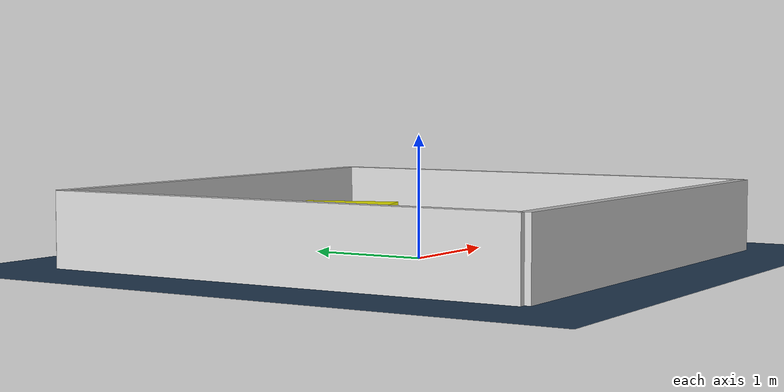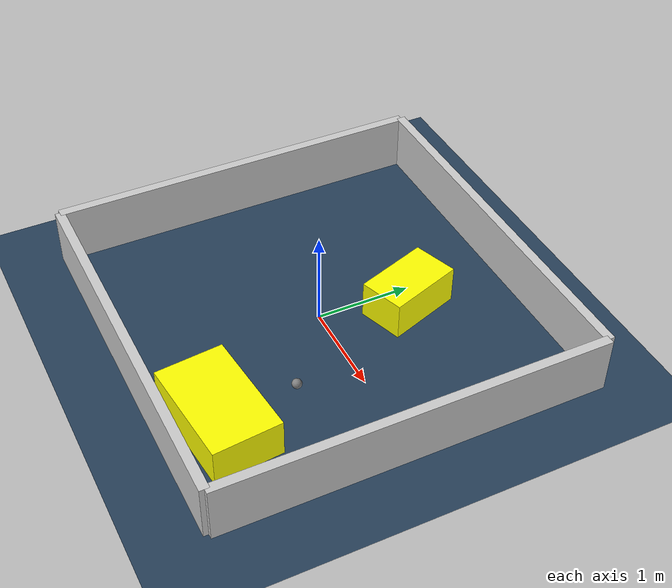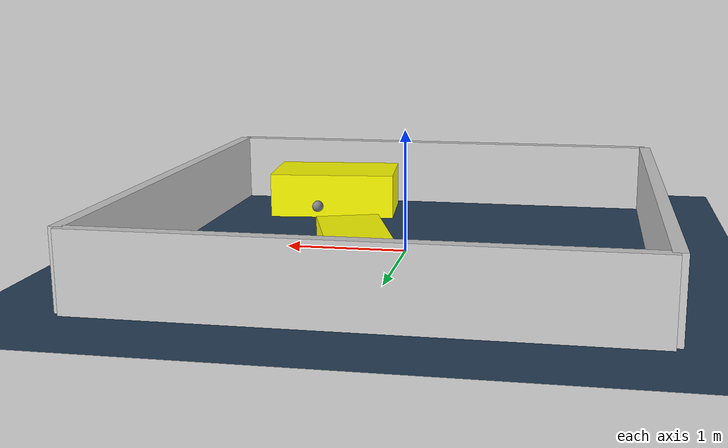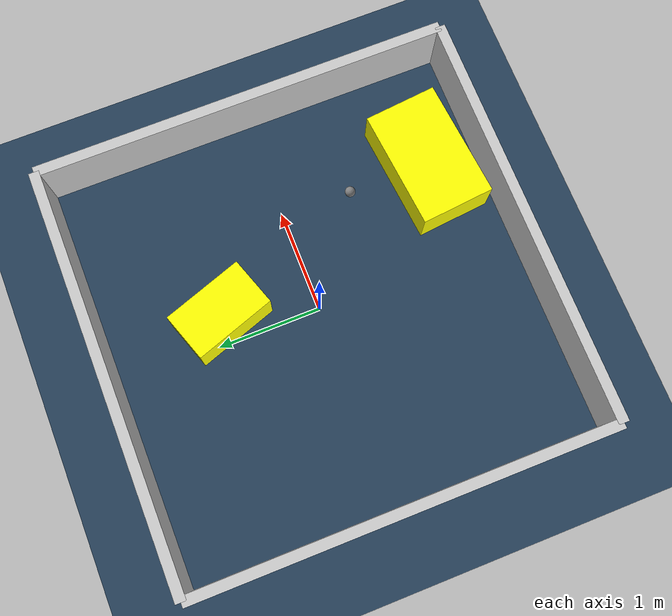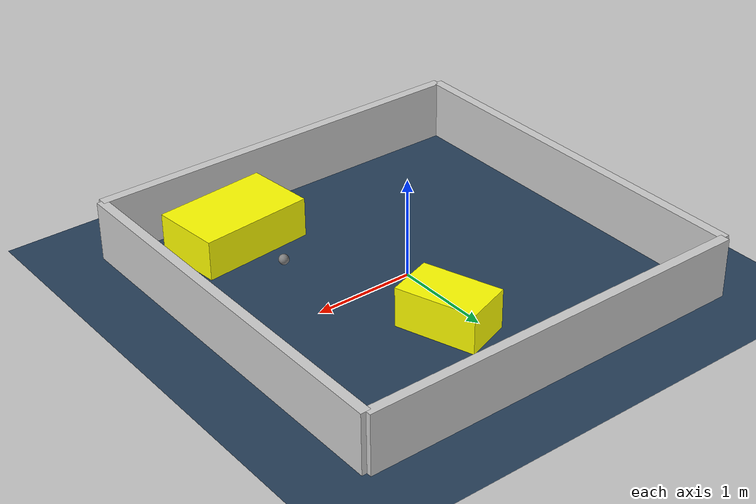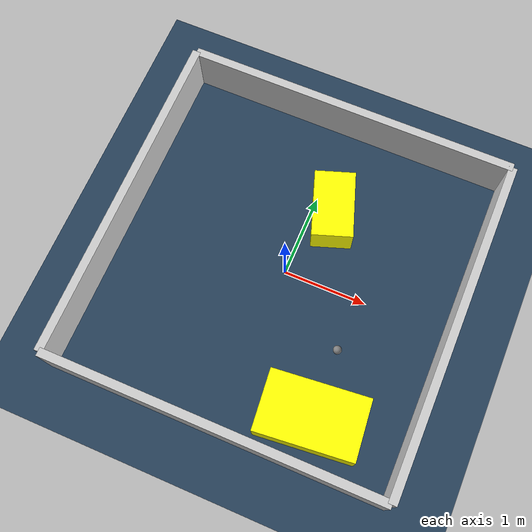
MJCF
<?xml version="1.0" ?>
<mujoco model="generated_environment">
  <option timestep="0.01" integrator="RK4" cone="elliptic"/>
  <default>
    <geom density="1"/>
  </default>
  <asset>
    <texture builtin="gradient" height="3072" rgb1="0.3 0.5 0.7" rgb2="0 0 0" type="skybox" width="512"/>
    <texture builtin="checker" height="300" mark="edge" markrgb="0.8 0.8 0.8" name="groundplane" rgb1="0.2 0.3 0.4" rgb2="0.1 0.2 0.3" type="2d" width="300"/>
    <material name="groundplane" reflectance="0.2" texrepeat="5 5" texture="groundplane" texuniform="true"/>
    <material name="robot" rgba="0.0 1.0 0.0 1"/>
  </asset>
  <worldbody>
    <light dir="0 0 -1" directional="true" pos="0 0 1.5"/>
    <geom condim="4" friction="1.0 0.005 0.001" material="groundplane" name="floor" size="0 0 0.05" type="plane"/>
    <body name="walls">
      <geom name="wall_1" condim="4" pos="-2.0 0.0 0.3" rgba="0.800000011920929 0.800000011920929 0.800000011920929 1.0" size="0.05 2.0 0.3" type="box"/>
      <geom name="wall_2" condim="4" pos="2.0 0.0 0.3" rgba="0.800000011920929 0.800000011920929 0.800000011920929 1.0" size="0.05 2.0 0.3" type="box"/>
      <geom name="wall_3" condim="4" pos="0.0 -2.0 0.3" rgba="0.800000011920929 0.800000011920929 0.800000011920929 1.0" size="2.0 0.05 0.3" type="box"/>
      <geom name="wall_4" condim="4" pos="0.0 2.0 0.3" rgba="0.800000011920929 0.800000011920929 0.800000011920929 1.0" size="2.0 0.05 0.3" type="box"/>
    </body>
    <body name="robot">
      <joint name="joint_x" type="slide" pos="0 0 0" axis="1 0 0"/>
      <joint name="joint_y" type="slide" pos="0 0 0" axis="0 1 0"/>
      <geom name="robot" type="sphere" pos="0.9112099766201331 -0.6676870533723576 0.2" size="0.05" mass="5." friction="1.0 0.005 0.0001" condim="4"/>
      <site name="sensor_ball"/>
    </body>
    <body name="obstacle_1_movable">
      <geom name="obstacle_1_movable" condim="4" pos="0.2434138674264923 0.8759243044746237 0.2" euler="0 0 108.97506379838595" friction="1.0 0.005 0.001" rgba="1 1 0 1" size="0.4029780206486079 0.24123271592397877 0.2" type="box" mass="0.1"/>
      <joint type="free"/>
    </body>
    <body name="obstacle_2_movable">
      <geom name="obstacle_2_movable" condim="4" pos="0.9262685940331026 -1.4583779111904338 0.2" euler="0 0 5.636948187828006" friction="1.0 0.005 0.001" rgba="1 1 0 1" size="0.5734317072345859 0.3534529701365907 0.2" type="box" mass="0.1"/>
      <joint type="free"/>
    </body>
  </worldbody>
  <actuator>
    <motor name="actuator_x" joint="joint_x" gear="1" ctrlrange="-1 1"/>
    <motor name="actuator_y" joint="joint_y" gear="1" ctrlrange="-1 1"/>
  </actuator>
</mujoco>
